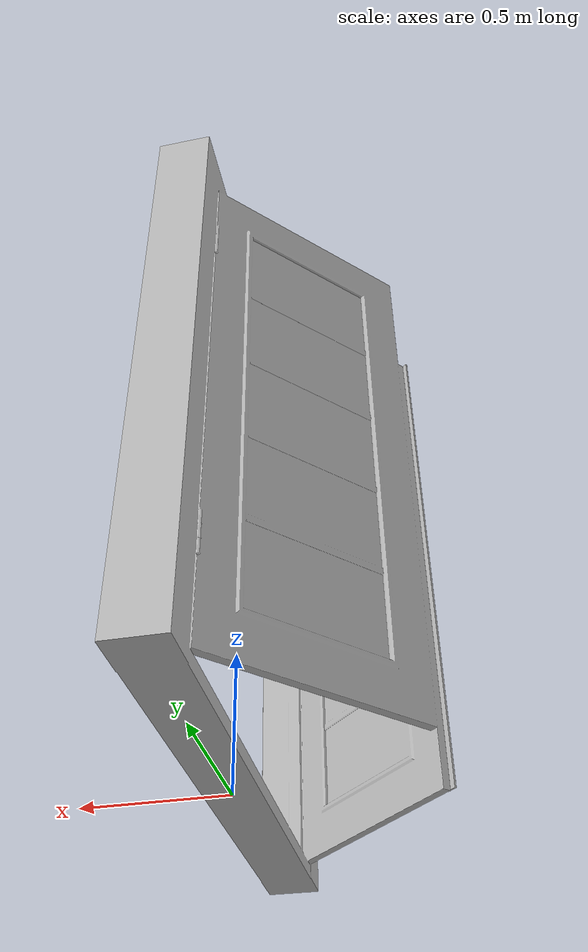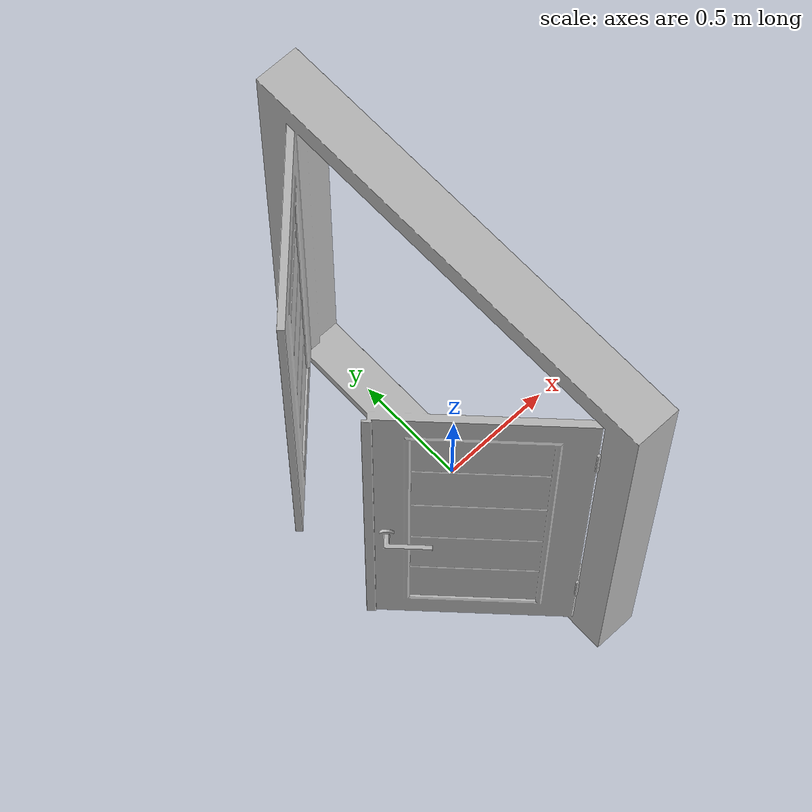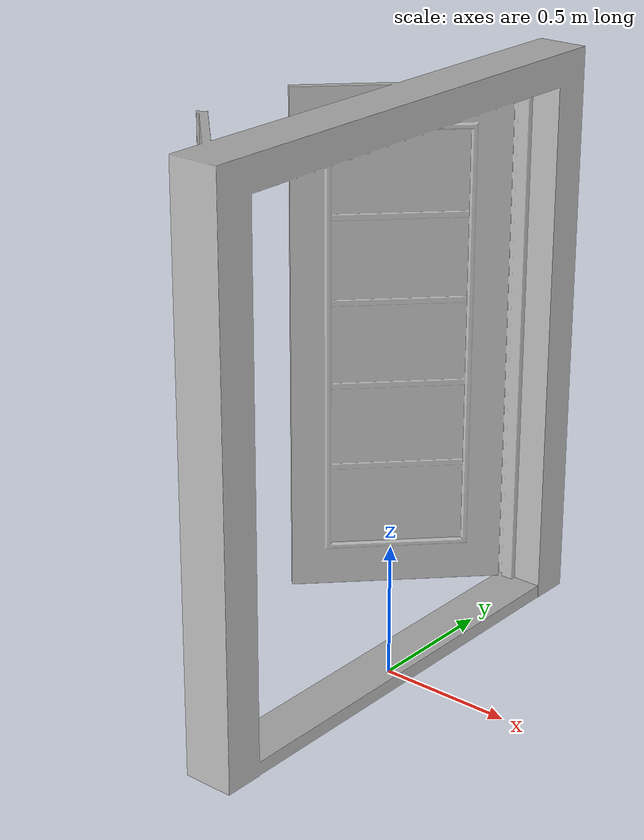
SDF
<?xml version='1.0'?>
<sdf version='1.4'>
  <model name='133'>
    <pose>0 0 0 0 0 0</pose>
    <static>true</static>
    <link name='link'>
      <collision name='collision'>
        <pose>0 0 0 0 0 0</pose>
        <geometry>
          <box>
            <size>0.769999 1.9 2</size>
          </box>
        </geometry>
      </collision>
      <visual name='visual'>
        <pose>0 0 0 0 0 0</pose>
        <geometry>
          <mesh><uri>model://133/133.dae</uri></mesh>
        </geometry>
      </visual>
    </link>
  </model>
</sdf>
